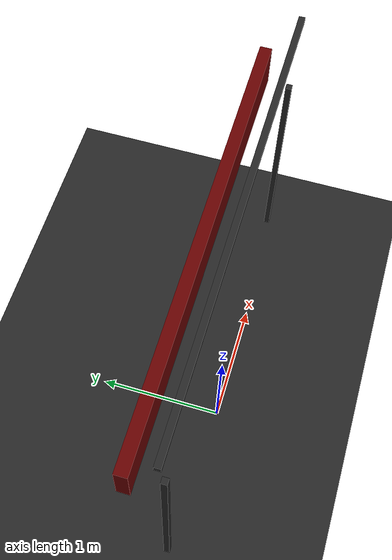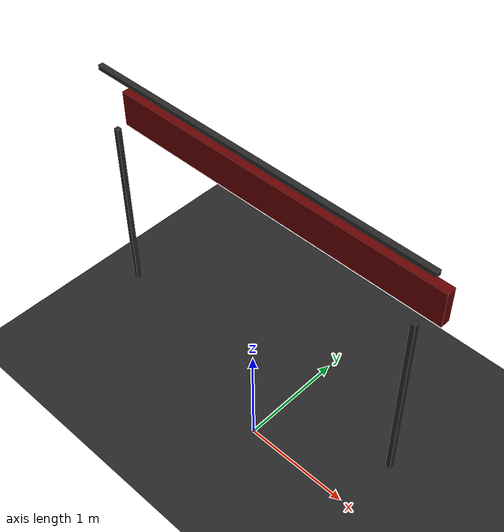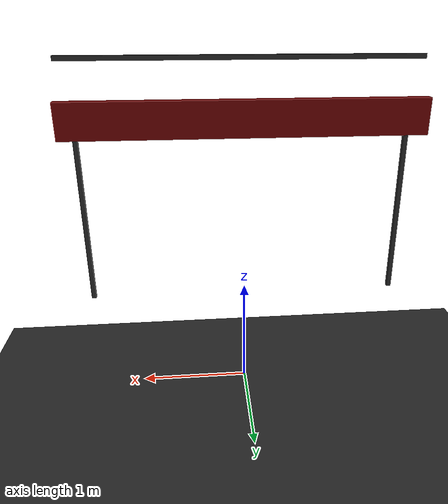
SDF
<sdf version='1.4'>
  <world name='default'>

    <include>
      <uri>model://sun</uri>
    </include>
    <include>
      <uri>model://ground_plane</uri>
    </include>

    <!-- Dark ambient for dramatic stage feel -->
    <scene>
      <shadows>0</shadows>
      <ambient>0.05 0.05 0.05 1</ambient>
      <background>0.02 0.02 0.02 1</background>
    </scene>

    <!-- Camera: front-of-stage view (audience perspective, +Y → -Y) -->
    <gui fullscreen='0'>
      <camera name='user_camera'>
        <pose>0 3.0 1.2 0 0.35 -1.5708</pose>
        <view_controller>orbit</view_controller>
      </camera>
    </gui>

    <physics type='ode'>
      <max_step_size>0.01</max_step_size>
      <real_time_factor>1</real_time_factor>
      <real_time_update_rate>100</real_time_update_rate>
      <gravity>0 0 -9.8</gravity>
    </physics>

    <light type="spot" name="spot_center">
      <pose>0 0 3.5 0 0 0</pose>
      <diffuse>0.5 0.48 0.42 1</diffuse>
      <specular>0.05 0.05 0.05 1</specular>
      <attenuation>
        <range>20</range>
        <constant>0.5</constant>
        <linear>0.01</linear>
        <quadratic>0.001</quadratic>
      </attenuation>
      <direction>0 0 -1</direction>
      <spot>
        <inner_angle>0.5</inner_angle>
        <outer_angle>1.0</outer_angle>
        <falloff>1.0</falloff>
      </spot>
      <cast_shadows>false</cast_shadows>
    </light>

    <light type="spot" name="spot_left">
      <pose>-1.2 0.5 3.0 0 0 0</pose>
      <diffuse>0.45 0.18 0.04 1</diffuse>
      <specular>0 0 0 1</specular>
      <attenuation>
        <range>15</range>
        <constant>0.6</constant>
        <linear>0.02</linear>
        <quadratic>0.001</quadratic>
      </attenuation>
      <direction>0.3 -0.2 -1</direction>
      <spot>
        <inner_angle>0.4</inner_angle>
        <outer_angle>0.8</outer_angle>
        <falloff>1.0</falloff>
      </spot>
      <cast_shadows>false</cast_shadows>
    </light>

    <light type="spot" name="spot_right">
      <pose>1.2 0.5 3.0 0 0 0</pose>
      <diffuse>0.08 0.22 0.45 1</diffuse>
      <specular>0 0 0 1</specular>
      <attenuation>
        <range>15</range>
        <constant>0.6</constant>
        <linear>0.02</linear>
        <quadratic>0.001</quadratic>
      </attenuation>
      <direction>-0.3 -0.2 -1</direction>
      <spot>
        <inner_angle>0.4</inner_angle>
        <outer_angle>0.8</outer_angle>
        <falloff>1.0</falloff>
      </spot>
      <cast_shadows>false</cast_shadows>
    </light>

    <model name="stage_floor">
      <static>1</static>
      <pose>0 0 0.001 0 0 0</pose>
      <link name="link">
        <visual name="visual">
          <geometry>
            <box><size>10.0 10.0 0.002</size></box>
          </geometry>
          <material>
            <ambient>0.10 0.10 0.10 1</ambient>
            <diffuse>0.15 0.15 0.15 1</diffuse>
            <specular>0.02 0.02 0.02 1</specular>
          </material>
        </visual>
      </link>
    </model>

    <!-- ============================================================
         VALANCE  (horizontal border across the top of the opening)
    ============================================================ -->
    <model name="stage_valance">
      <static>1</static>
      <pose>0 0.2 2.6 0 0 0</pose>
      <link name="link">
        <visual name="visual">
          <geometry>
            <box><size>3.0 0.08 0.3</size></box>
          </geometry>
          <material>
            <ambient>0.22 0.0 0.0 1</ambient>
            <diffuse>0.40 0.0 0.0 1</diffuse>
            <specular>0.01 0.0 0.0 1</specular>
          </material>
        </visual>
      </link>
    </model>

    <model name="stage_rig_bar">
      <static>1</static>
      <pose>0 0 3.05 0 0 0</pose>
      <link name="link">
        <visual name="visual">
          <geometry>
            <box><size>3.0 0.04 0.04</size></box>
          </geometry>
          <material>
            <ambient>0.1 0.1 0.1 1</ambient>
            <diffuse>0.15 0.15 0.15 1</diffuse>
          </material>
        </visual>
      </link>
    </model>

    <!-- Rig bar vertical supports -->
    <model name="stage_rig_post_left">
      <static>1</static>
      <pose>-1.4 0 1.75 0 0 0</pose>
      <link name="link">
        <visual name="visual">
          <geometry>
            <box><size>0.04 0.04 1.6</size></box>
          </geometry>
          <material>
            <ambient>0.1 0.1 0.1 1</ambient>
            <diffuse>0.15 0.15 0.15 1</diffuse>
          </material>
        </visual>
      </link>
    </model>

    <model name="stage_rig_post_right">
      <static>1</static>
      <pose>1.4 0 1.75 0 0 0</pose>
      <link name="link">
        <visual name="visual">
          <geometry>
            <box><size>0.04 0.04 1.6</size></box>
          </geometry>
          <material>
            <ambient>0.1 0.1 0.1 1</ambient>
            <diffuse>0.15 0.15 0.15 1</diffuse>
          </material>
        </visual>
      </link>
    </model>

  </world>
</sdf>
